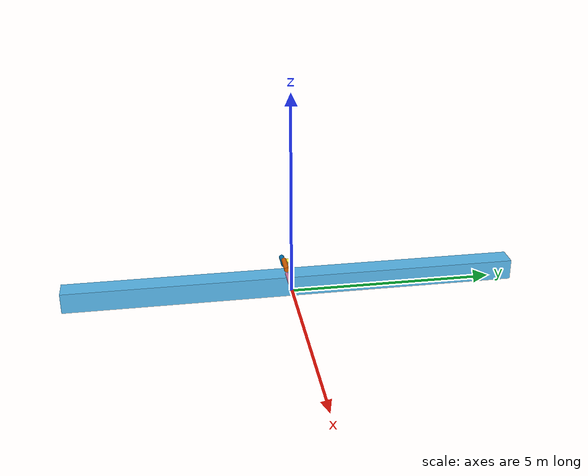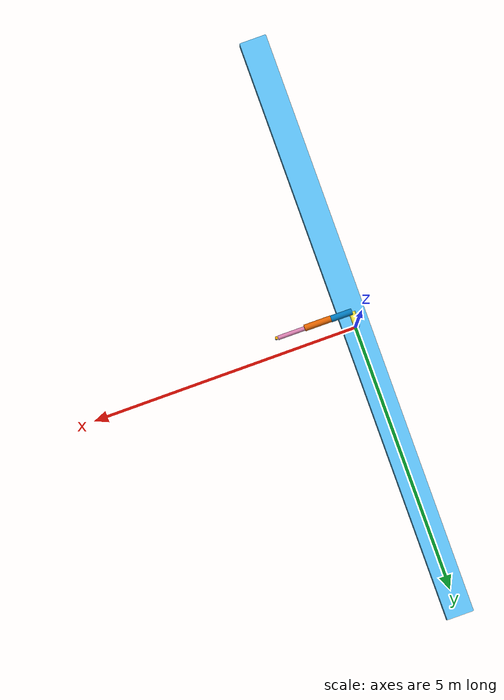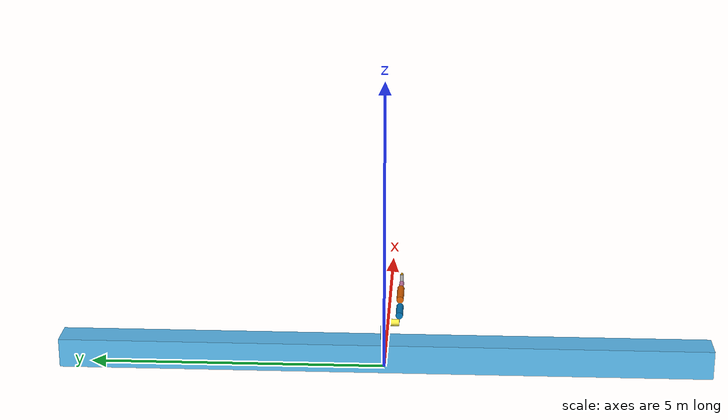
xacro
<?xml version="1.0"?>
    <robot xmlns:xacro="http://wiki.ros.org/xacro"  name="arm">

        <!-- common stuff -->
          <xacro:include filename="$(find man_gazebo)/urdf/common.gazebo.xacro" />
         <xacro:include filename="$(find man_gazebo)/urdf/6dof/transmission_6dof.xacro" />
          <xacro:include filename="$(find man_gazebo)/urdf/gazebo.xacro" />

         <xacro:macro name="cylinder_inertial" params="radius length mass *origin">
            <inertial>
              <mass value="${mass}" />
              <xacro:insert_block name="origin" />
              <inertia ixx="${0.0833333 * mass * (3 * radius * radius + length * length)}" ixy="0.0" ixz="0.0"
                iyy="${0.0833333 * mass * (3 * radius * radius + length * length)}" iyz="0.0"
                izz="${0.5 * mass * radius * radius}" />
            </inertial>
          </xacro:macro>

        <xacro:macro name="joint_limit" params="joint_type link_length ">
            <xacro:if value="${joint_type == 'revolute'}"  >
                <xacro:property name="joint_upper_limit" value="${pi}" />
                <xacro:property name="joint_lower_limit" value="${-pi}" />
            </xacro:if>
            <xacro:unless value="${joint_type == 'revolute'}"  >
                <xacro:property name="joint_upper_limit" value="${link_length}" />
                <xacro:property name="joint_lower_limit" value="${-link_length}" />
            </xacro:unless>
            <limit lower="${joint_lower_limit}" upper="${joint_upper_limit}" effort="150.0" velocity="3.15"/>
        </xacro:macro>

        <xacro:macro name="arm_robot" params="prefix ">

        <xacro:property name="joint0_type" value="prismatic" />
        <xacro:property name="joint1_type" value="revolute" />
        <xacro:property name="joint2_type" value="revolute" />
        <xacro:property name="joint3_type" value="revolute" />
        <xacro:property name="joint4_type" value="revolute" />
        <xacro:property name="joint5_type" value="revolute" />
        <xacro:property name="joint6_type" value="revolute" />

        <xacro:property name="joint0_axe" value="0 1 0" />
        <xacro:property name="joint1_axe" value="0 0 1" />
        <xacro:property name="joint2_axe" value="0 1 0" />
        <xacro:property name="joint3_axe" value="0 1 0" />
        <xacro:property name="joint4_axe" value="0 1 0" />
        <xacro:property name="joint5_axe" value="0 1 0" />
        <xacro:property name="joint6_axe" value="0 0 1" />

        <xacro:property name="base_length"  value="11" />
        <xacro:property name="base_height"  value="0.5" />
        <xacro:property name="link0_length" value="0.25" />
        <xacro:property name="link1_length" value="0.25" />
        <xacro:property name="link2_length" value="0.4" />
        <xacro:property name="link3_length" value="0.5" />
        <xacro:property name="link4_length" value="0.5" />
        <xacro:property name="link5_length" value="0.15" />
        <xacro:property name="link6_length" value="0.02" />

            <!-- Inertia parameters -->
        <xacro:property name="base_mass" value="44" />
        <xacro:property name="link0_mass" value="7" />
        <xacro:property name="link1_mass" value="3.004225" />
        <xacro:property name="link2_mass" value="2.92596" />
        <xacro:property name="link3_mass" value="3.657449999999999" />
        <xacro:property name="link4_mass" value="3.657449999999999" />
        <xacro:property name="link5_mass" value="1.0972349999999995" />
        <xacro:property name="link6_mass" value="0.14629799999999982" />

        <!-- Radius for each links -->
        <xacro:property name="base_radius" value="0.060" />
        <xacro:property name="link0_radius" value="0.060" />
        <xacro:property name="link1_radius" value="0.060" />
        <xacro:property name="link2_radius" value="0.060" />
        <xacro:property name="link3_radius" value="0.060" />
        <xacro:property name="link4_radius" value="0.040" />
        <xacro:property name="link5_radius" value="0.030" />
        <xacro:property name="link6_radius" value="0.025" />

        <!-- used for fixing robot to Gazebo 'base_link -->
        <link name="world"/>

        <joint name="world_joint" type="fixed">
            <parent link="world" />
            <child link = "base_link" />
            <origin xyz="0 0 0" rpy="0.0 0.0 0.0" />
        </joint>

        <!--   Base Link -->
    <link name="${prefix}base_link" >
      <visual>
		    <origin xyz="0 0 ${base_height/2}" rpy="0 0 0" />
        <geometry>
 			    <box size="${base_height} ${base_length} ${base_height}"/>
        </geometry>
      </visual>
      <collision>
			 <origin xyz="0 0 ${base_height/2}" rpy="0 0 0" />
        <geometry>
			    <box size="${base_length} ${base_length} ${base_height}"/>
        </geometry>
      </collision>
      <inertial>
        <mass value="${base_mass}" />
        <origin xyz="0.0 0.0 ${base_height/2}" />
        <inertia ixx="436.5" ixy="0"  ixz="0"
                          iyy="1.8" iyz="0"
                                  izz="436.5"/>
      </inertial>
    </link>

         <!--  joint 0	-->
                <joint name="${prefix}joint0" type="${joint0_type}">
                  <parent link="${prefix}base_link" />
                  <child link = "${prefix}link0" />
                  <origin xyz="0.0 0 ${base_height + link0_radius+0.01}" rpy="0 0.0 0" />
                  <axis xyz="${joint0_axe}" />
                  <xacro:joint_limit joint_type="${joint0_type}" link_length="${base_length/2}"/>
                  <dynamics damping="0.0" friction="0.0"/>
                </joint>
             <!--  link 0 -->
                        <link name="${prefix}link0">
                          <visual>
                            <origin xyz="0 0 ${link0_radius} " rpy="0 0 0" />
                            <geometry>
                                <cylinder radius="${link0_radius}" length="${link0_length}"/>
                            </geometry>
                          </visual>
                          <collision>
                             <origin xyz="0 0 ${link0_radius}" rpy="0 0 0" />
                            <geometry>
                                <cylinder radius="${link0_radius}" length="${link0_length}"  mass="${link0_mass}"/>
                            </geometry>
                          </collision>
                          <xacro:cylinder_inertial radius="${link0_radius}" length="${link0_length}" mass="${link0_mass}">
                            <origin xyz="0.0 0.0 ${link0_radius}" rpy="0 0 0" />
                          </xacro:cylinder_inertial>
                        </link>

                 <!--  joint 1	-->
            <joint name="${prefix}joint1" type="${joint1_type}">
              <parent link="${prefix}link0" />
              <child link = "${prefix}link1" />
              <origin xyz="0.0 0.0 ${link0_length}" rpy="${pi/2} 0 0" />
              <axis xyz="${joint1_axe}" />
              <xacro:joint_limit joint_type="${joint1_type}" link_length="${link1_length}"/>
              <dynamics damping="0.0" friction="0.0"/>
            </joint>
             <!-- link1	-->
            <link name="${prefix}link1">
            <visual>
                <origin xyz="0 0 ${link1_length / 2}" rpy="0 0 0" />
                    <geometry>
                        <cylinder radius="${link1_radius}" length="${link1_length}"/>
                    </geometry>
            </visual>
                <collision>
                    <origin xyz="0 0 ${link1_length/2}" rpy="0 0 0" />
                        <geometry>
                            <cylinder radius="${link1_radius}" length="${link1_length}" mass="${link1_mass}"/>
                         </geometry>
                </collision>

            <xacro:cylinder_inertial radius="${link1_radius}" length="${link1_length}" mass="${link1_mass}">
            <origin xyz="0.0 0.0 ${link1_length/2}" rpy="0 0 0" />
            </xacro:cylinder_inertial>
            </link>

                 <!--  joint 2	-->
                <joint name="${prefix}joint2" type="revolute">
                    <parent link="${prefix}link1"/>
                    <child link="${prefix}link2" />
                    <origin xyz="0.0 ${link1_radius * 2.0} ${link1_length }" rpy="0 ${pi/2} 0"/>
                    <axis xyz="0 1 0"/>
                    <xacro:joint_limit joint_type="${joint2_type}" link_length="${link2_length}"/>
                    <dynamics damping="0.0" friction="0.0"/>
                </joint>

                 <!-- link2	-->
            <link name="${prefix}link2">
            <visual>
                <origin xyz="0 0 ${link2_length / 2}" rpy="0 0 0" />
                    <geometry>
                        <cylinder radius="${link2_radius}" length="${link2_length}"/>
                    </geometry>
            </visual>
                <collision>
                    <origin xyz="0 0 ${link2_length/2}" rpy="0 0 0" />
                        <geometry>
                            <cylinder radius="${link2_radius}" length="${link2_length}" mass="${link2_mass}"/>
                         </geometry>
                </collision>

            <xacro:cylinder_inertial radius="${link2_radius}" length="${link2_length}" mass="${link2_mass}">
            <origin xyz="0.0 0.0 ${link2_length/2}" rpy="0 0 0" />
            </xacro:cylinder_inertial>
            </link>

                 <!--  joint 3	-->
                <joint name="${prefix}joint3" type="revolute">
                    <parent link="${prefix}link2"/>
                    <child link="${prefix}link3" />
                    <origin xyz="0.0 ${link2_radius*2.0} ${link2_length}" rpy="0 0 0"/>
                    <axis xyz="0 1 0"/>
                    <xacro:joint_limit joint_type="${joint3_type}" link_length="${link3_length}"/>
                    <dynamics damping="0.0" friction="0.0"/>
                </joint>

                 <!-- link3	-->
            <link name="${prefix}link3">
            <visual>
                <origin xyz="0 0 ${link3_length / 2}" rpy="0 0 0" />
                    <geometry>
                        <cylinder radius="${link3_radius}" length="${link3_length}"/>
                    </geometry>
            </visual>
                <collision>
                    <origin xyz="0 0 ${link3_length/2}" rpy="0 0 0" />
                        <geometry>
                            <cylinder radius="${link3_radius}" length="${link3_length}" mass="${link3_mass}"/>
                         </geometry>
                </collision>

            <xacro:cylinder_inertial radius="${link3_radius}" length="${link3_length}" mass="${link3_mass}">
            <origin xyz="0.0 0.0 ${link3_length/2}" rpy="0 0 0" />
            </xacro:cylinder_inertial>
            </link>

                 <!--  joint 4	-->
                <joint name="${prefix}joint4" type="revolute">
                    <parent link="${prefix}link3"/>
                    <child link="${prefix}link4" />
                    <origin xyz="0 -${link4_radius + link3_radius } ${link3_length}" rpy="0 0 0"/>
                    <axis xyz="0 1 0"/>
                    <xacro:joint_limit joint_type="${joint4_type}" link_length="${link4_length}"/>
                    <dynamics damping="0.0" friction="0.0"/>
                </joint>

                 <!-- link4	-->
            <link name="${prefix}link4">
            <visual>
                <origin xyz="0 0 ${link4_length / 2}" rpy="0 0 0" />
                    <geometry>
                        <cylinder radius="${link4_radius}" length="${link4_length}"/>
                    </geometry>
            </visual>
                <collision>
                    <origin xyz="0 0 ${link4_length/2}" rpy="0 0 0" />
                        <geometry>
                            <cylinder radius="${link4_radius}" length="${link4_length}" mass="${link4_mass}"/>
                         </geometry>
                </collision>

            <xacro:cylinder_inertial radius="${link4_radius}" length="${link4_length}" mass="${link4_mass}">
            <origin xyz="0.0 0.0 ${link4_length/2}" rpy="0 0 0" />
            </xacro:cylinder_inertial>
            </link>

                 <!--  joint 5	-->
                <joint name="${prefix}joint5" type="revolute">
                    <parent link="${prefix}link4"/>
                    <child link="${prefix}link5" />
                    <origin xyz="0 0 ${link4_length+link5_radius}" rpy="${-pi/2} 0 0"/>
                    <axis xyz="0 1 0"/>
                    <xacro:joint_limit joint_type="${joint5_type}" link_length="${link5_length}"/>
                    <dynamics damping="0.0" friction="0.0"/>
                </joint>

                 <!-- link5	-->
            <link name="${prefix}link5">
            <visual>
                <origin xyz="0 0 ${link5_length / 2}" rpy="0 0 0" />
                    <geometry>
                        <cylinder radius="${link5_radius}" length="${link5_length}"/>
                    </geometry>
            </visual>
                <collision>
                    <origin xyz="0 0 ${link5_length/2}" rpy="0 0 0" />
                        <geometry>
                            <cylinder radius="${link5_radius}" length="${link5_length}" mass="${link5_mass}"/>
                         </geometry>
                </collision>

            <xacro:cylinder_inertial radius="${link5_radius}" length="${link5_length}" mass="${link5_mass}">
            <origin xyz="0.0 0.0 ${link5_length/2}" rpy="0 0 0" />
            </xacro:cylinder_inertial>
            </link>

                 <!--  joint 6	-->
                <joint name="${prefix}joint6" type="revolute">
                    <parent link="${prefix}link5"/>
                    <child link="${prefix}link6" />
                    <origin xyz="0 0 ${link5_length }" rpy="0 0 0"/>
                    <axis xyz="0 0 1"/>
                    <xacro:joint_limit joint_type="${joint6_type}" link_length="${link6_length}"/>
                    <dynamics damping="0.0" friction="0.0"/>
                </joint>

                 <!-- link6	-->
            <link name="${prefix}link6">
            <visual>
                <origin xyz="0 0 ${link6_length / 2}" rpy="0 0 0" />
                    <geometry>
                        <cylinder radius="${link6_radius}" length="${link6_length}"/>
                    </geometry>
            </visual>
                <collision>
                    <origin xyz="0 0 ${link6_length/2}" rpy="0 0 0" />
                        <geometry>
                            <cylinder radius="${link6_radius}" length="${link6_length}" mass="${link6_mass}"/>
                         </geometry>
                </collision>

            <xacro:cylinder_inertial radius="${link6_radius}" length="${link6_length}" mass="${link6_mass}">
            <origin xyz="0.0 0.0 ${link6_length/2}" rpy="0 0 0" />
            </xacro:cylinder_inertial>
            </link>

        <!-- fake joint - the rotation about z axe of the camera is not important -->
        <joint name="fake_joint" type="revolute">
        <parent link="${prefix}link6" />
          <child link = "camera_link" />
          <origin xyz="0.0  0.0 ${link6_length}" rpy="0.0 0.0 0" />
          <axis xyz="0 0 1"/>
          <xacro:joint_limit joint_type="revolute" link_length="0.1"/>
          <dynamics damping="0.0" friction="0.0"/>
        </joint>

        <!-- camera link -->
        <link name="camera_link">
          <collision>
            <geometry>
              <box size="0.01 0.01 0.01"/>
            </geometry>
            <origin rpy="0 0 0" xyz="0 0 0.005"/>
          </collision>
          <xacro:cylinder_inertial radius="0.01" length="0.01" mass="0.01">
            <origin xyz="0.0 0.0 0.005" rpy="0 0 0" />
          </xacro:cylinder_inertial>
        </link>

        <joint name="${prefix}ee_fixed_joint" type="fixed">
          <parent link="${prefix}camera_link" />
          <child link = "${prefix}ee_link" />
          <origin xyz="0.0  0.0 0.01" rpy="0.0 0.0 0" />
         </joint>

        <!-- ee link -->
        <link name="${prefix}ee_link">
          <collision>
            <geometry>
              <box size="0.01 0.01 0.01"/>
            </geometry>
            <origin rpy="0 0 0" xyz="0 0 0.005"/>
          </collision>
        </link>

    <xacro:arm_transmission prefix="${prefix}" />
    <xacro:arm_gazebo prefix="${prefix}" />

  </xacro:macro>

   <xacro:arm_robot prefix=""/>

    </robot>
